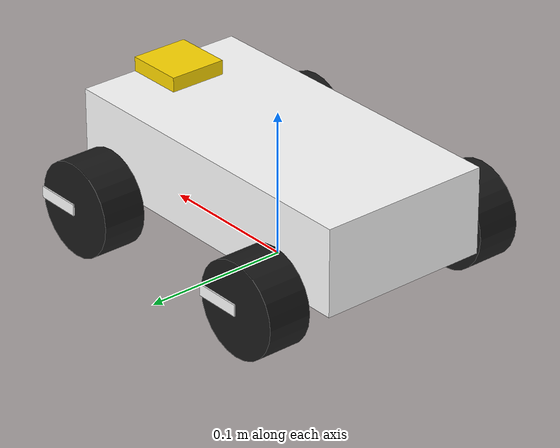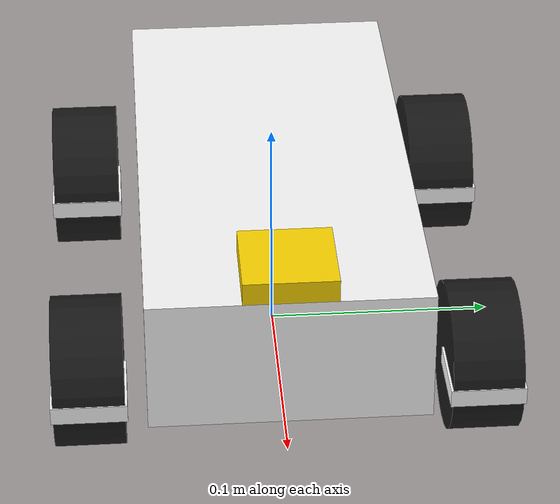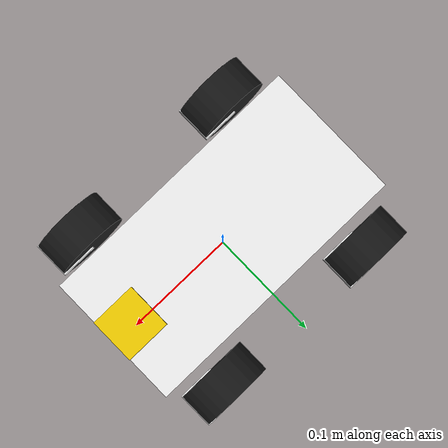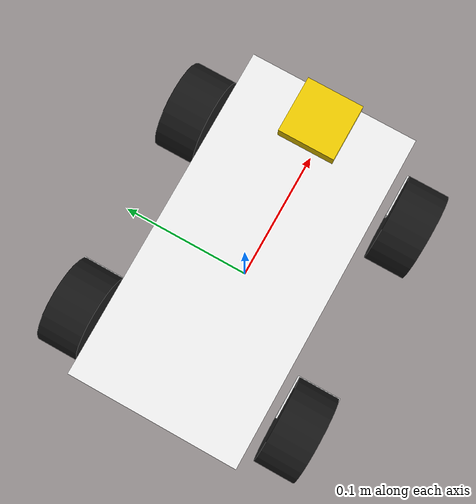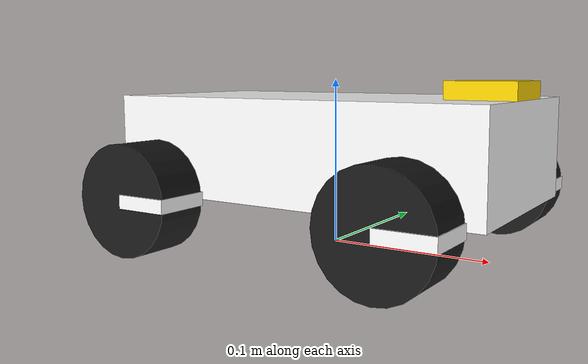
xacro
<?xml version="1.0"?>
<robot xmlns:xacro="http://www.ros.org/wiki/xacro" name="rosmaster_x3">

    <xacro:arg name="namespace" default=""/>
    <xacro:property name="namespace" value="$(arg namespace)"/>

    <xacro:arg name="color" default="white"/>
    <xacro:property name="body_color" value="$(arg color)"/>

    <!-- gripper (Step 7): true = mount the V-shaped soft gripper (gripper.xacro).
         Default false: Steps 1-6 use the robot without gripper. -->
    <xacro:arg name="gripper" default="false"/>
    <xacro:property name="gripper" value="$(arg gripper)"/>

    <xacro:include filename="properties.xacro"/>   <!-- colors (materials) -->
    <xacro:include filename="robot_core.xacro"/>   <!-- links and joints of the robot -->
    <xacro:include filename="ros2_control.xacro"/> <!-- joint interfaces for ros2_control -->
    <xacro:include filename="gazebo.xacro"/>       <!-- Gazebo-only settings (friction, plugins) -->
    <xacro:if value="${gripper}">
        <xacro:include filename="gripper.xacro"/>  <!-- V-shaped soft gripper (Step 7) -->
    </xacro:if>

</robot>

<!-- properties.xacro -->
<robot xmlns:xacro="http://www.ros.org/wiki/xacro">

    <!-- Color definitions (red green blue alpha, each between 0 and 1) -->
    <material name="white">
        <color rgba="1 1 1 1"/>
    </material>

    <material name="orange">
        <color rgba="1 0.3 0.1 1"/>
    </material>

    <material name="blue">
        <color rgba="0.2 0.2 1 1"/>
    </material>

    <material name="black">
        <color rgba="0.1 0.1 0.1 1"/>
    </material>

    <material name="red">
        <color rgba="1 0 0 1"/>
    </material>

    <material name="yellow">
        <color rgba="1 0.85 0 1"/>
    </material>

</robot>

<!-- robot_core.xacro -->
<robot xmlns:xacro="http://www.ros.org/wiki/xacro">

    <!-- Inertia formulas for box, cylinder and sphere -->
    <xacro:include filename="inertial_macros.xacro"/>

    <!--  Parameters (meters, kilograms)                               -->

    <!-- Wheels: diameter 65 mm, width 30.4 mm -->
    <xacro:property name="wheel_radius" value="0.0325"/>   <!-- r_w in Eq. 1 -->
    <xacro:property name="wheel_width"  value="0.0304"/>
    <xacro:property name="wheel_mass"   value="0.1"/>      <!-- approximate -->

    <!-- Wheel positions measured from the robot center -->
    <xacro:property name="lx" value="0.080"/>    <!-- l_x in Eq. 1: half of the 160 mm wheelbase -->
    <xacro:property name="ly" value="0.0845"/>   <!-- l_y in Eq. 1: (199.4 - 30.4) / 2 mm -->

    <!-- Chassis: one box that represents the whole body of the robot -->
    <xacro:property name="chassis_length" value="0.238"/>
    <xacro:property name="chassis_width"  value="0.12"/>   <!-- fits between the wheels (138.6 mm gap) -->
    <xacro:property name="chassis_height" value="0.06"/>
    <xacro:property name="chassis_z"      value="0.06"/>   <!-- height of the box center above the ground -->
    <xacro:property name="chassis_mass"   value="2.0"/>    <!-- approximate -->

    <!--  base_link: the reference frame of the robot                  -->
    <link name="base_link"/>

    <!--  Chassis                                                      -->
    <joint name="chassis_joint" type="fixed">
        <parent link="base_link"/>
        <child link="chassis_link"/>
        <origin xyz="0 0 ${chassis_z}" rpy="0 0 0"/>
    </joint>

    <link name="chassis_link">
        <!-- Main body -->
        <visual>
            <origin xyz="0 0 0" rpy="0 0 0"/>
            <geometry>
                <box size="${chassis_length} ${chassis_width} ${chassis_height}"/>
            </geometry>
            <material name="${body_color}"/>   <!-- xacro argument "color" (robot.urdf.xacro) -->
        </visual>
        <!-- Yellow marker on the front, so we can see where the robot is looking (+X).
             (Yellow, not red: it must be visible on a red robot too.) -->
        <visual>
            <origin xyz="${chassis_length/2 - 0.02} 0 ${chassis_height/2 + 0.005}" rpy="0 0 0"/>
            <geometry>
                <box size="0.04 0.04 0.01"/>
            </geometry>
            <material name="yellow"/>
        </visual>
        <collision>
            <origin xyz="0 0 0" rpy="0 0 0"/>
            <geometry>
                <box size="${chassis_length} ${chassis_width} ${chassis_height}"/>
            </geometry>
        </collision>
        <xacro:inertial_box mass="${chassis_mass}" x="${chassis_length}" y="${chassis_width}" z="${chassis_height}">
            <origin xyz="0 0 0" rpy="0 0 0"/>
        </xacro:inertial_box>
    </link>

    <!--  Wheels                                                       -->
    <xacro:macro name="mecanum_wheel" params="index x y">

        <joint name="wheel_${index}_joint" type="continuous">
            <parent link="base_link"/>
            <child link="wheel_${index}_link"/>
            <origin xyz="${x} ${y} ${wheel_radius}" rpy="${-pi/2} 0 0"/>
            <axis xyz="0 0 1"/>
            <dynamics damping="0.01" friction="0.0"/>
        </joint>

        <link name="wheel_${index}_link">
            <!-- The wheel -->
            <visual>
                <geometry>
                    <cylinder radius="${wheel_radius}" length="${wheel_width}"/>
                </geometry>
                <material name="black"/>
            </visual>
            <!-- A white stripe, so we can SEE the wheel spinning -->
            <visual>
                <origin xyz="${wheel_radius/2} 0 0" rpy="0 0 0"/>
                <geometry>
                    <box size="${wheel_radius} 0.008 ${wheel_width + 0.002}"/>
                </geometry>
                <material name="white"/>
            </visual>
            <collision>
                <geometry>
                    <cylinder radius="${wheel_radius}" length="${wheel_width}"/>
                </geometry>
            </collision>
            <xacro:inertial_cylinder mass="${wheel_mass}" length="${wheel_width}" radius="${wheel_radius}">
                <origin xyz="0 0 0" rpy="0 0 0"/>
            </xacro:inertial_cylinder>
        </link>

    </xacro:macro>

    <!-- The four wheels (numbering of Fig. 6) -->
    <xacro:mecanum_wheel index="0" x="${ lx}" y="${ ly}"/>   <!-- front-left  -->
    <xacro:mecanum_wheel index="1" x="${ lx}" y="${-ly}"/>   <!-- front-right -->
    <xacro:mecanum_wheel index="2" x="${-lx}" y="${ ly}"/>   <!-- rear-left   -->
    <xacro:mecanum_wheel index="3" x="${-lx}" y="${-ly}"/>   <!-- rear-right  -->

</robot>
